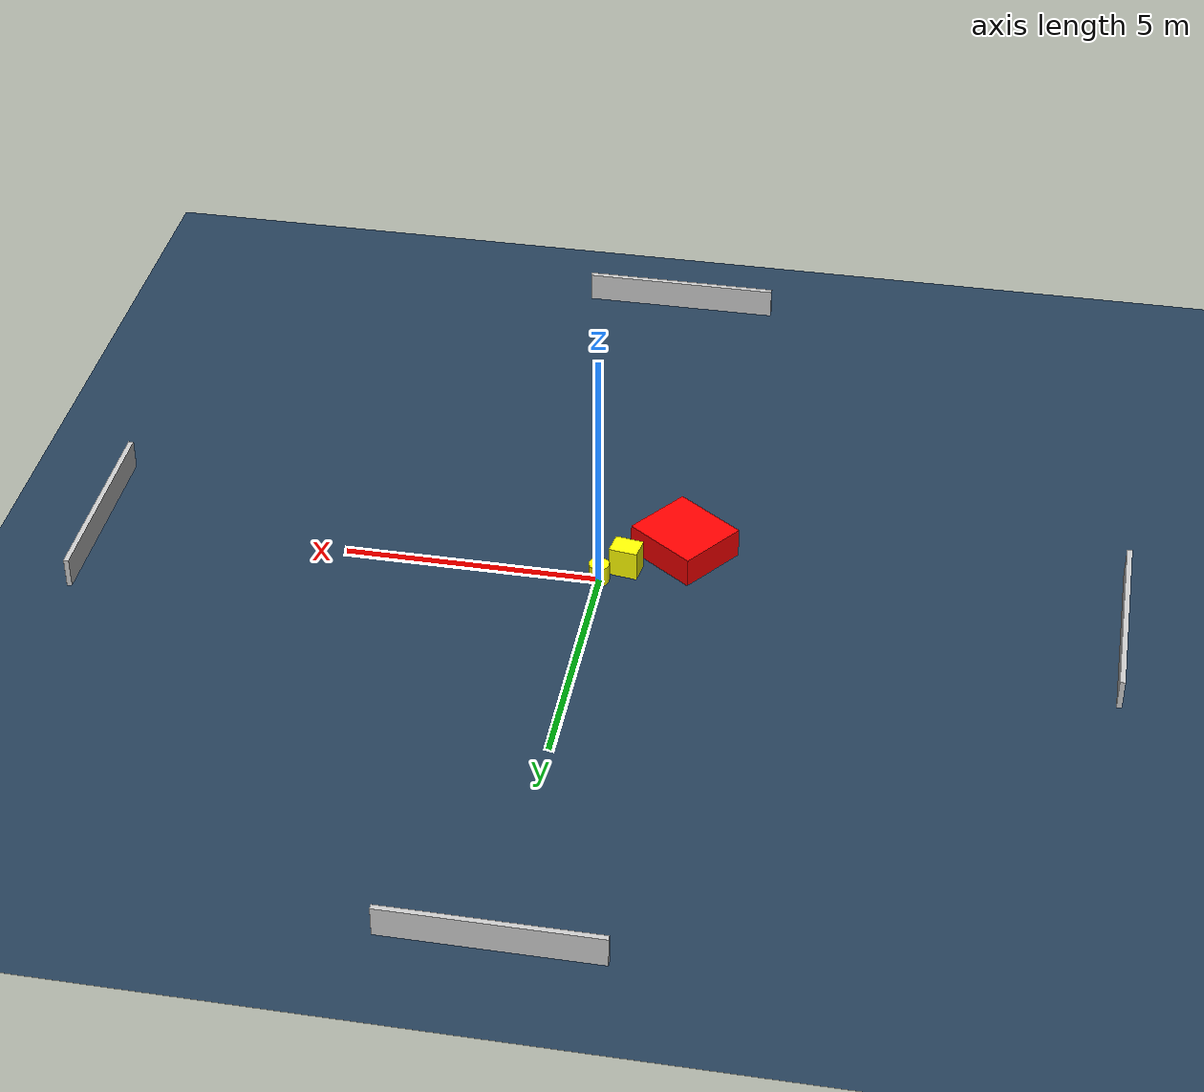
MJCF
<?xml version="1.0" ?>
<mujoco model="generated_environment">
  <option timestep="0.01" integrator="RK4" cone="elliptic"/>
  <default>
    <geom density="1"/>
  </default>
  <asset>
    <texture builtin="gradient" height="3072" name="skybox" rgb1="0.3 0.5 0.7" rgb2="0 0 0" type="skybox" width="512"/>
    <texture builtin="checker" height="300" name="groundplane" rgb1="0.2 0.3 0.4" rgb2="0.1 0.2 0.3" type="2d" width="300"/>
    <material name="groundplane" reflectance="0.2" texrepeat="5 5" texture="groundplane"/>
  </asset>
  <worldbody>
    <light dir="0 0 -1" directional="true" pos="0 0 1.5"/>
    <geom condim="3" friction="0.5 0.005 0.001" material="groundplane" name="floor" pos="0 0 0" size="0 0 0.05" type="plane"/>
    <body name="walls">
      <geom name="wall_1" condim="4" pos="-10.0 0.0 0.3" rgba="0.800000011920929 0.800000011920929 0.800000011920929 1.0" size="0.05 2.0 0.3" type="box"/>
      <geom name="wall_2" condim="4" pos="10.0 0.0 0.3" rgba="0.800000011920929 0.800000011920929 0.800000011920929 1.0" size="0.05 2.0 0.3" type="box"/>
      <geom name="wall_3" condim="4" pos="0.0 -10.0 0.3" rgba="0.800000011920929 0.800000011920929 0.800000011920929 1.0" size="2.0 0.05 0.3" type="box"/>
      <geom name="wall_4" condim="4" pos="0.0 10.0 0.3" rgba="0.800000011920929 0.800000011920929 0.800000011920929 1.0" size="2.0 0.05 0.3" type="box"/>
    </body>
    <body name="robot">
      <joint name="joint_x" type="slide" pos="0 0 0" axis="1 0 0"/>
      <joint name="joint_y" type="slide" pos="0 0 0" axis="0 1 0"/>
      <geom name="robot" type="cylinder" pos="0.0 0.0 0.2" size="0.2 0.2 0.0" mass="5.0" friction="1.0 0.005 0.0001" condim="4" rgba="1.0 1.0 0.0 1.0"/>
    </body>
    <body name="obstacle_1_movable">
      <geom name="obstacle_1_movable" condim="4" pos="-0.46054919174438547 -0.3997913846402199 0.3" euler="0 0 171.54590735716258" friction="0.0 0.005 0.001" rgba="1.0 1.0 0.0 1.0" size="0.2797556461799691 0.2202468104744708 0.3" type="box" mass="0.1"/>
      <joint type="free"/>
    </body>
    <body name="obstacle_2_static">
      <geom name="obstacle_2_static" condim="4" pos="-1.4876490095271573 -1.1516389326148826 0.3" euler="0 0 324.1130148707715" friction="0.0 0.005 0.001" rgba="1.0 0.0 0.0 1.0" size="0.772595815516899 0.7045982361393046 0.3" type="box"/>
    </body>
  </worldbody>
  <actuator>
    <motor name="actuator_x" joint="joint_x" gear="1" ctrlrange="-1 1"/>
    <motor name="actuator_y" joint="joint_y" gear="1" ctrlrange="-1 1"/>
  </actuator>
</mujoco>
